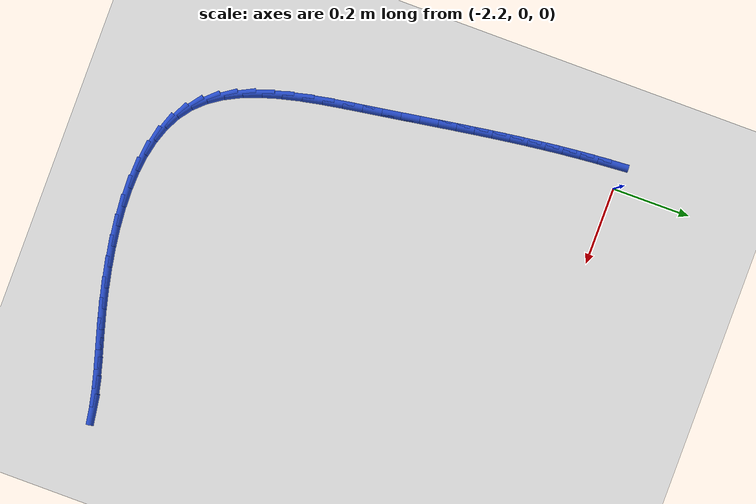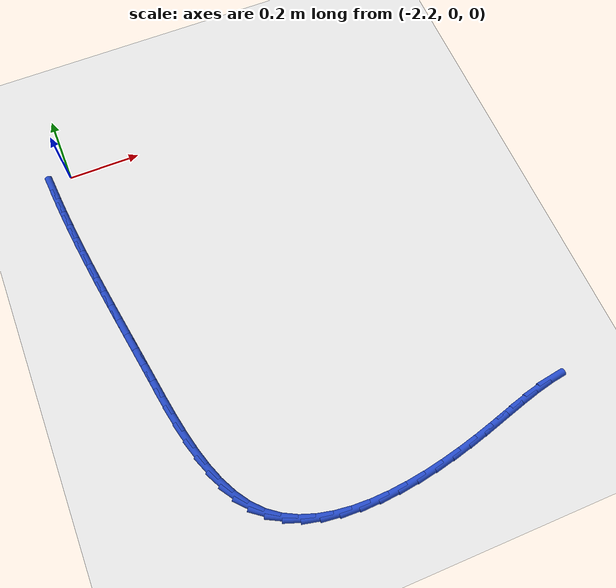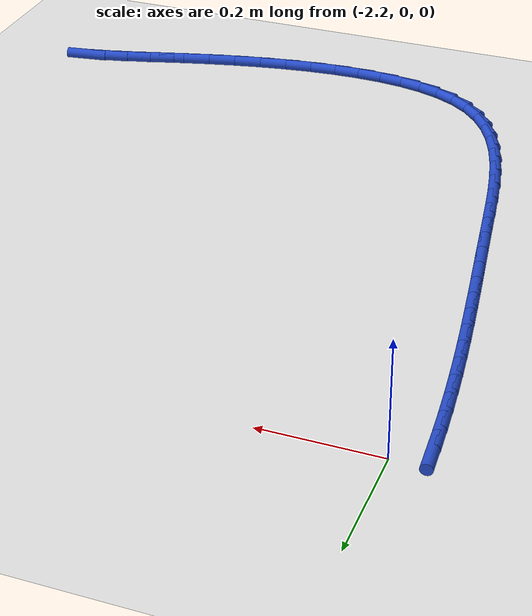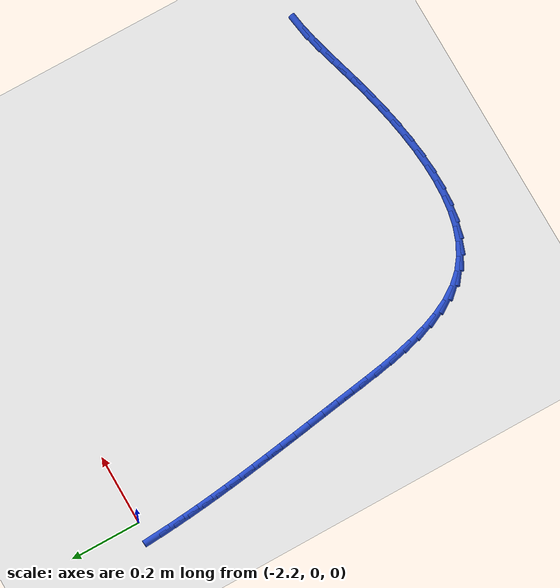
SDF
<sdf version="1.6">
 <world name="default">
  <model name="ground_plane">
   <static>1</static>
   <link name="link">
    <collision name="collision">
     <geometry><plane><normal>0 0 1</normal><size>100 100</size></plane></geometry>
     <surface><friction><ode><mu>100</mu><mu2>50</mu2></ode></friction></surface>
    </collision>
    <visual name="visual">
     <cast_shadows>0</cast_shadows>
     <geometry><plane><normal>0 0 1</normal><size>100 100</size></plane></geometry>
     <material>
      <script><uri>file://media/materials/scripts/gazebo.material</uri><name>Gazebo/WhiteGlow</name></script>
     </material>
    </visual>
   </link>
  </model>
  <model name="line">
   <link name="link_81">
    <pose>-2.255760650373742 -0.023815509615383437 0.01 0 1.57 -1.497484912824635</pose>
    <collision name="collision">
     <geometry><cylinder><radius>0.01</radius><length>0.08</length></cylinder></geometry>
    </collision>
    <visual name="visual">
     <material>
      <script><name>Gazebo/Blue</name><uri>file://media/materials/scripts/gazebo.material</uri></script>
     </material>
     <geometry><cylinder><radius>0.01</radius><length>0.08</length></cylinder></geometry>
    </visual>
   </link>
   <link name="link_82">
    <pose>-2.252402782210193 -0.06953622530855506 0.01 0 1.57 -1.4830214054293869</pose>
    <collision name="collision">
     <geometry><cylinder><radius>0.01</radius><length>0.08</length></cylinder></geometry>
    </collision>
    <visual name="visual">
     <material>
      <script><name>Gazebo/Blue</name><uri>file://media/materials/scripts/gazebo.material</uri></script>
     </material>
     <geometry><cylinder><radius>0.01</radius><length>0.08</length></cylinder></geometry>
    </visual>
   </link>
   <link name="link_83">
    <pose>-2.248414290195795 -0.11485946410254058 0.01 0 1.57 -1.469666112955214</pose>
    <collision name="collision">
     <geometry><cylinder><radius>0.01</radius><length>0.08</length></cylinder></geometry>
    </collision>
    <visual name="visual">
     <material>
      <script><name>Gazebo/Blue</name><uri>file://media/materials/scripts/gazebo.material</uri></script>
     </material>
     <geometry><cylinder><radius>0.01</radius><length>0.08</length></cylinder></geometry>
    </visual>
   </link>
   <link name="link_84">
    <pose>-2.243843219631598 -0.15990511849708175 0.01 0 1.57 -1.4575419984768954</pose>
    <collision name="collision">
     <geometry><cylinder><radius>0.01</radius><length>0.08</length></cylinder></geometry>
    </collision>
    <visual name="visual">
     <material>
      <script><name>Gazebo/Blue</name><uri>file://media/materials/scripts/gazebo.material</uri></script>
     </material>
     <geometry><cylinder><radius>0.01</radius><length>0.08</length></cylinder></geometry>
    </visual>
   </link>
   <link name="link_85">
    <pose>-2.2387376158186565 -0.20479308099191934 0.01 0 1.57 -1.4467526139761469</pose>
    <collision name="collision">
     <geometry><cylinder><radius>0.01</radius><length>0.08</length></cylinder></geometry>
    </collision>
    <visual name="visual">
     <material>
      <script><name>Gazebo/Blue</name><uri>file://media/materials/scripts/gazebo.material</uri></script>
     </material>
     <geometry><cylinder><radius>0.01</radius><length>0.08</length></cylinder></geometry>
    </visual>
   </link>
   <link name="link_86">
    <pose>-2.233145524058023 -0.2496432440867945 0.01 0 1.57 -1.4373796855796264</pose>
    <collision name="collision">
     <geometry><cylinder><radius>0.01</radius><length>0.08</length></cylinder></geometry>
    </collision>
    <visual name="visual">
     <material>
      <script><name>Gazebo/Blue</name><uri>file://media/materials/scripts/gazebo.material</uri></script>
     </material>
     <geometry><cylinder><radius>0.01</radius><length>0.08</length></cylinder></geometry>
    </visual>
   </link>
   <link name="link_87">
    <pose>-2.227114989650752 -0.29457550028144874 0.01 0 1.57 -1.4294815998349941</pose>
    <collision name="collision">
     <geometry><cylinder><radius>0.01</radius><length>0.08</length></cylinder></geometry>
    </collision>
    <visual name="visual">
     <material>
      <script><name>Gazebo/Blue</name><uri>file://media/materials/scripts/gazebo.material</uri></script>
     </material>
     <geometry><cylinder><radius>0.01</radius><length>0.08</length></cylinder></geometry>
    </visual>
   </link>
   <link name="link_88">
    <pose>-2.2206940578978953 -0.33970974207562155 0.01 0 1.57 -1.423092809874306</pose>
    <collision name="collision">
     <geometry><cylinder><radius>0.01</radius><length>0.08</length></cylinder></geometry>
    </collision>
    <visual name="visual">
     <material>
      <script><name>Gazebo/Blue</name><uri>file://media/materials/scripts/gazebo.material</uri></script>
     </material>
     <geometry><cylinder><radius>0.01</radius><length>0.08</length></cylinder></geometry>
    </visual>
   </link>
   <link name="link_89">
    <pose>-2.213930774100508 -0.38516586196905456 0.01 0 1.57 -1.4182241184023472</pose>
    <collision name="collision">
     <geometry><cylinder><radius>0.01</radius><length>0.08</length></cylinder></geometry>
    </collision>
    <visual name="visual">
     <material>
      <script><name>Gazebo/Blue</name><uri>file://media/materials/scripts/gazebo.material</uri></script>
     </material>
     <geometry><cylinder><radius>0.01</radius><length>0.08</length></cylinder></geometry>
    </visual>
   </link>
   <link name="link_90">
    <pose>-2.206873183559642 -0.43106375246148865 0.01 0 1.57 -1.4148637447181027</pose>
    <collision name="collision">
     <geometry><cylinder><radius>0.01</radius><length>0.08</length></cylinder></geometry>
    </collision>
    <visual name="visual">
     <material>
      <script><name>Gazebo/Blue</name><uri>file://media/materials/scripts/gazebo.material</uri></script>
     </material>
     <geometry><cylinder><radius>0.01</radius><length>0.08</length></cylinder></geometry>
    </visual>
   </link>
   <link name="link_91">
    <pose>-2.199569331576351 -0.4775233060526649 0.01 0 1.57 -1.41297904825412</pose>
    <collision name="collision">
     <geometry><cylinder><radius>0.01</radius><length>0.08</length></cylinder></geometry>
    </collision>
    <visual name="visual">
     <material>
      <script><name>Gazebo/Blue</name><uri>file://media/materials/scripts/gazebo.material</uri></script>
     </material>
     <geometry><cylinder><radius>0.01</radius><length>0.08</length></cylinder></geometry>
    </visual>
   </link>
   <link name="link_92">
    <pose>-2.1920672634516887 -0.5246644152423251 0.01 0 1.57 -1.4125187616838484</pose>
    <collision name="collision">
     <geometry><cylinder><radius>0.01</radius><length>0.08</length></cylinder></geometry>
    </collision>
    <visual name="visual">
     <material>
      <script><name>Gazebo/Blue</name><uri>file://media/materials/scripts/gazebo.material</uri></script>
     </material>
     <geometry><cylinder><radius>0.01</radius><length>0.08</length></cylinder></geometry>
    </visual>
   </link>
   <link name="link_93">
    <pose>-2.1844150244867073 -0.5726069725302082 0.01 0 1.57 -1.4134155808753943</pose>
    <collision name="collision">
     <geometry><cylinder><radius>0.01</radius><length>0.08</length></cylinder></geometry>
    </collision>
    <visual name="visual">
     <material>
      <script><name>Gazebo/Blue</name><uri>file://media/materials/scripts/gazebo.material</uri></script>
     </material>
     <geometry><cylinder><radius>0.01</radius><length>0.08</length></cylinder></geometry>
    </visual>
   </link>
   <link name="link_94">
    <pose>-2.1766606599824607 -0.6214708704160561 0.01 0 1.57 -1.4154036676558068</pose>
    <collision name="collision">
     <geometry><cylinder><radius>0.01</radius><length>0.08</length></cylinder></geometry>
    </collision>
    <visual name="visual">
     <material>
      <script><name>Gazebo/Blue</name><uri>file://media/materials/scripts/gazebo.material</uri></script>
     </material>
     <geometry><cylinder><radius>0.01</radius><length>0.08</length></cylinder></geometry>
    </visual>
   </link>
   <link name="link_95">
    <pose>-2.1688445721902183 -0.6713643142465805 0.01 0 1.57 -1.4125819866820302</pose>
    <collision name="collision">
     <geometry><cylinder><radius>0.01</radius><length>0.08</length></cylinder></geometry>
    </collision>
    <visual name="visual">
     <material>
      <script><name>Gazebo/Blue</name><uri>file://media/materials/scripts/gazebo.material</uri></script>
     </material>
     <geometry><cylinder><radius>0.01</radius><length>0.08</length></cylinder></geometry>
    </visual>
   </link>
   <link name="link_96">
    <pose>-2.160762376350012 -0.7220212002457802 0.01 0 1.57 -1.3981416262491067</pose>
    <collision name="collision">
     <geometry><cylinder><radius>0.01</radius><length>0.08</length></cylinder></geometry>
    </collision>
    <visual name="visual">
     <material>
      <script><name>Gazebo/Blue</name><uri>file://media/materials/scripts/gazebo.material</uri></script>
     </material>
     <geometry><cylinder><radius>0.01</radius><length>0.08</length></cylinder></geometry>
    </visual>
   </link>
   <link name="link_97">
    <pose>-2.1519190444662315 -0.772730995768619 0.01 0 1.57 -1.371265715701458</pose>
    <collision name="collision">
     <geometry><cylinder><radius>0.01</radius><length>0.08</length></cylinder></geometry>
    </collision>
    <visual name="visual">
     <material>
      <script><name>Gazebo/Blue</name><uri>file://media/materials/scripts/gazebo.material</uri></script>
     </material>
     <geometry><cylinder><radius>0.01</radius><length>0.08</length></cylinder></geometry>
    </visual>
   </link>
   <link name="link_98">
    <pose>-2.1418026494004114 -0.8227573273245674 0.01 0 1.57 -1.3306689092431807</pose>
    <collision name="collision">
     <geometry><cylinder><radius>0.01</radius><length>0.08</length></cylinder></geometry>
    </collision>
    <visual name="visual">
     <material>
      <script><name>Gazebo/Blue</name><uri>file://media/materials/scripts/gazebo.material</uri></script>
     </material>
     <geometry><cylinder><radius>0.01</radius><length>0.08</length></cylinder></geometry>
    </visual>
   </link>
   <link name="link_99">
    <pose>-2.1299012640140838 -0.8713638214230937 0.01 0 1.57 -1.2741489050392283</pose>
    <collision name="collision">
     <geometry><cylinder><radius>0.01</radius><length>0.08</length></cylinder></geometry>
    </collision>
    <visual name="visual">
     <material>
      <script><name>Gazebo/Blue</name><uri>file://media/materials/scripts/gazebo.material</uri></script>
     </material>
     <geometry><cylinder><radius>0.01</radius><length>0.08</length></cylinder></geometry>
    </visual>
   </link>
   <link name="link_100">
    <pose>-2.1157029611687843 -0.9178141045736675 0.01 0 1.57 -1.1985488452214001</pose>
    <collision name="collision">
     <geometry><cylinder><radius>0.01</radius><length>0.08</length></cylinder></geometry>
    </collision>
    <visual name="visual">
     <material>
      <script><name>Gazebo/Blue</name><uri>file://media/materials/scripts/gazebo.material</uri></script>
     </material>
     <geometry><cylinder><radius>0.01</radius><length>0.08</length></cylinder></geometry>
    </visual>
   </link>
   <link name="link_101">
    <pose>-2.098695813726044 -0.9613718032857581 0.01 0 1.57 -1.0998913249662168</pose>
    <collision name="collision">
     <geometry><cylinder><radius>0.01</radius><length>0.08</length></cylinder></geometry>
    </collision>
    <visual name="visual">
     <material>
      <script><name>Gazebo/Blue</name><uri>file://media/materials/scripts/gazebo.material</uri></script>
     </material>
     <geometry><cylinder><radius>0.01</radius><length>0.08</length></cylinder></geometry>
    </visual>
   </link>
   <link name="link_102">
    <pose>-2.078367894547398 -1.0013005440688332 0.01 0 1.57 -0.9740524283631989</pose>
    <collision name="collision">
     <geometry><cylinder><radius>0.01</radius><length>0.08</length></cylinder></geometry>
    </collision>
    <visual name="visual">
     <material>
      <script><name>Gazebo/Blue</name><uri>file://media/materials/scripts/gazebo.material</uri></script>
     </material>
     <geometry><cylinder><radius>0.01</radius><length>0.08</length></cylinder></geometry>
    </visual>
   </link>
   <link name="link_103">
    <pose>-2.0542072764943793 -1.036863953432362 0.01 0 1.57 -0.8185649495480781</pose>
    <collision name="collision">
     <geometry><cylinder><radius>0.01</radius><length>0.08</length></cylinder></geometry>
    </collision>
    <visual name="visual">
     <material>
      <script><name>Gazebo/Blue</name><uri>file://media/materials/scripts/gazebo.material</uri></script>
     </material>
     <geometry><cylinder><radius>0.01</radius><length>0.08</length></cylinder></geometry>
    </visual>
   </link>
   <link name="link_104">
    <pose>-2.0257020330193067 -1.0673256585257191 0.01 0 1.57 -0.6423265684801623</pose>
    <collision name="collision">
     <geometry><cylinder><radius>0.01</radius><length>0.08</length></cylinder></geometry>
    </collision>
    <visual name="visual">
     <material>
      <script><name>Gazebo/Blue</name><uri>file://media/materials/scripts/gazebo.material</uri></script>
     </material>
     <geometry><cylinder><radius>0.01</radius><length>0.08</length></cylinder></geometry>
    </visual>
   </link>
   <link name="link_105">
    <pose>-1.9925240112538956 -1.0921483394681444 0.01 0 1.57 -0.4778368472108875</pose>
    <collision name="collision">
     <geometry><cylinder><radius>0.01</radius><length>0.08</length></cylinder></geometry>
    </collision>
    <visual name="visual">
     <material>
      <script><name>Gazebo/Blue</name><uri>file://media/materials/scripts/gazebo.material</uri></script>
     </material>
     <geometry><cylinder><radius>0.01</radius><length>0.08</length></cylinder></geometry>
    </visual>
   </link>
   <link name="link_106">
    <pose>-1.955047858163429 -1.111555908316743 0.01 0 1.57 -0.33596664318415437</pose>
    <collision name="collision">
     <geometry><cylinder><radius>0.01</radius><length>0.08</length></cylinder></geometry>
    </collision>
    <visual name="visual">
     <material>
      <script><name>Gazebo/Blue</name><uri>file://media/materials/scripts/gazebo.material</uri></script>
     </material>
     <geometry><cylinder><radius>0.01</radius><length>0.08</length></cylinder></geometry>
    </visual>
   </link>
   <link name="link_107">
    <pose>-1.9138161986520914 -1.1259542210703175 0.01 0 1.57 -0.21691755482066813</pose>
    <collision name="collision">
     <geometry><cylinder><radius>0.01</radius><length>0.08</length></cylinder></geometry>
    </collision>
    <visual name="visual">
     <material>
      <script><name>Gazebo/Blue</name><uri>file://media/materials/scripts/gazebo.material</uri></script>
     </material>
     <geometry><cylinder><radius>0.01</radius><length>0.08</length></cylinder></geometry>
    </visual>
   </link>
   <link name="link_108">
    <pose>-1.869371657624063 -1.1357491337276713 0.01 0 1.57 -0.11824852669775256</pose>
    <collision name="collision">
     <geometry><cylinder><radius>0.01</radius><length>0.08</length></cylinder></geometry>
    </collision>
    <visual name="visual">
     <material>
      <script><name>Gazebo/Blue</name><uri>file://media/materials/scripts/gazebo.material</uri></script>
     </material>
     <geometry><cylinder><radius>0.01</radius><length>0.08</length></cylinder></geometry>
    </visual>
   </link>
   <link name="link_109">
    <pose>-1.822256859983526 -1.1413465022876077 0.01 0 1.57 -0.03665277715489067</pose>
    <collision name="collision">
     <geometry><cylinder><radius>0.01</radius><length>0.08</length></cylinder></geometry>
    </collision>
    <visual name="visual">
     <material>
      <script><name>Gazebo/Blue</name><uri>file://media/materials/scripts/gazebo.material</uri></script>
     </material>
     <geometry><cylinder><radius>0.01</radius><length>0.08</length></cylinder></geometry>
    </visual>
   </link>
   <link name="link_110">
    <pose>-1.773014430634663 -1.1431521827489297 0.01 0 1.57 0.031078546976350766</pose>
    <collision name="collision">
     <geometry><cylinder><radius>0.01</radius><length>0.08</length></cylinder></geometry>
    </collision>
    <visual name="visual">
     <material>
      <script><name>Gazebo/Blue</name><uri>file://media/materials/scripts/gazebo.material</uri></script>
     </material>
     <geometry><cylinder><radius>0.01</radius><length>0.08</length></cylinder></geometry>
    </visual>
   </link>
   <link name="link_111">
    <pose>-1.7221869944816546 -1.1415720311104411 0.01 0 1.57 0.08768940494568092</pose>
    <collision name="collision">
     <geometry><cylinder><radius>0.01</radius><length>0.08</length></cylinder></geometry>
    </collision>
    <visual name="visual">
     <material>
      <script><name>Gazebo/Blue</name><uri>file://media/materials/scripts/gazebo.material</uri></script>
     </material>
     <geometry><cylinder><radius>0.01</radius><length>0.08</length></cylinder></geometry>
    </visual>
   </link>
   <link name="link_112">
    <pose>-1.6703171764286846 -1.1370119033709447 0.01 0 1.57 0.13539540191953736</pose>
    <collision name="collision">
     <geometry><cylinder><radius>0.01</radius><length>0.08</length></cylinder></geometry>
    </collision>
    <visual name="visual">
     <material>
      <script><name>Gazebo/Blue</name><uri>file://media/materials/scripts/gazebo.material</uri></script>
     </material>
     <geometry><cylinder><radius>0.01</radius><length>0.08</length></cylinder></geometry>
    </visual>
   </link>
   <link name="link_113">
    <pose>-1.6179476013799339 -1.1298776555292434 0.01 0 1.57 0.1759393703837438</pose>
    <collision name="collision">
     <geometry><cylinder><radius>0.01</radius><length>0.08</length></cylinder></geometry>
    </collision>
    <visual name="visual">
     <material>
      <script><name>Gazebo/Blue</name><uri>file://media/materials/scripts/gazebo.material</uri></script>
     </material>
     <geometry><cylinder><radius>0.01</radius><length>0.08</length></cylinder></geometry>
    </visual>
   </link>
   <link name="link_114">
    <pose>-1.5656208942395846 -1.1205751435841407 0.01 0 1.57 0.21067784483512947</pose>
    <collision name="collision">
     <geometry><cylinder><radius>0.01</radius><length>0.08</length></cylinder></geometry>
    </collision>
    <visual name="visual">
     <material>
      <script><name>Gazebo/Blue</name><uri>file://media/materials/scripts/gazebo.material</uri></script>
     </material>
     <geometry><cylinder><radius>0.01</radius><length>0.08</length></cylinder></geometry>
    </visual>
   </link>
   <link name="link_115">
    <pose>-1.5138796799118188 -1.1095102235344398 0.01 0 1.57 0.2406635629087464</pose>
    <collision name="collision">
     <geometry><cylinder><radius>0.01</radius><length>0.08</length></cylinder></geometry>
    </collision>
    <visual name="visual">
     <material>
      <script><name>Gazebo/Blue</name><uri>file://media/materials/scripts/gazebo.material</uri></script>
     </material>
     <geometry><cylinder><radius>0.01</radius><length>0.08</length></cylinder></geometry>
    </visual>
   </link>
   <link name="link_116">
    <pose>-1.4632665833008174 -1.0970887513789436 0.01 0 1.57 0.26554833582462595</pose>
    <collision name="collision">
     <geometry><cylinder><radius>0.01</radius><length>0.08</length></cylinder></geometry>
    </collision>
    <visual name="visual">
     <material>
      <script><name>Gazebo/Blue</name><uri>file://media/materials/scripts/gazebo.material</uri></script>
     </material>
     <geometry><cylinder><radius>0.01</radius><length>0.08</length></cylinder></geometry>
    </visual>
   </link>
   <link name="link_117">
    <pose>-1.414236177151545 -1.083753885037229 0.01 0 1.57 0.27792191367625496</pose>
    <collision name="collision">
     <geometry><cylinder><radius>0.01</radius><length>0.08</length></cylinder></geometry>
    </collision>
    <visual name="visual">
     <material>
      <script><name>Gazebo/Blue</name><uri>file://media/materials/scripts/gazebo.material</uri></script>
     </material>
     <geometry><cylinder><radius>0.01</radius><length>0.08</length></cylinder></geometry>
    </visual>
   </link>
   <link name="link_118">
    <pose>-1.3666820717290697 -1.0701864254142077 0.01 0 1.57 0.27366366633313216</pose>
    <collision name="collision">
     <geometry><cylinder><radius>0.01</radius><length>0.08</length></cylinder></geometry>
    </collision>
    <visual name="visual">
     <material>
      <script><name>Gazebo/Blue</name><uri>file://media/materials/scripts/gazebo.material</uri></script>
     </material>
     <geometry><cylinder><radius>0.01</radius><length>0.08</length></cylinder></geometry>
    </visual>
   </link>
   <link name="link_119">
    <pose>-1.3202777408231217 -1.0571604307912732 0.01 0 1.57 0.2514691078736101</pose>
    <collision name="collision">
     <geometry><cylinder><radius>0.01</radius><length>0.08</length></cylinder></geometry>
    </collision>
    <visual name="visual">
     <material>
      <script><name>Gazebo/Blue</name><uri>file://media/materials/scripts/gazebo.material</uri></script>
     </material>
     <geometry><cylinder><radius>0.01</radius><length>0.08</length></cylinder></geometry>
    </visual>
   </link>
   <link name="link_120">
    <pose>-1.2746961383367117 -1.045450179691702 0.01 0 1.57 0.2102228812965906</pose>
    <collision name="collision">
     <geometry><cylinder><radius>0.01</radius><length>0.08</length></cylinder></geometry>
    </collision>
    <visual name="visual">
     <material>
      <script><name>Gazebo/Blue</name><uri>file://media/materials/scripts/gazebo.material</uri></script>
     </material>
     <geometry><cylinder><radius>0.01</radius><length>0.08</length></cylinder></geometry>
    </visual>
   </link>
   <link name="link_121">
    <pose>-1.2296102181728499 -1.0358299506387691 0.01 0 1.57 0.14928915559007194</pose>
    <collision name="collision">
     <geometry><cylinder><radius>0.01</radius><length>0.08</length></cylinder></geometry>
    </collision>
    <visual name="visual">
     <material>
      <script><name>Gazebo/Blue</name><uri>file://media/materials/scripts/gazebo.material</uri></script>
     </material>
     <geometry><cylinder><radius>0.01</radius><length>0.08</length></cylinder></geometry>
    </visual>
   </link>
  </model>
 </world>
</sdf>
